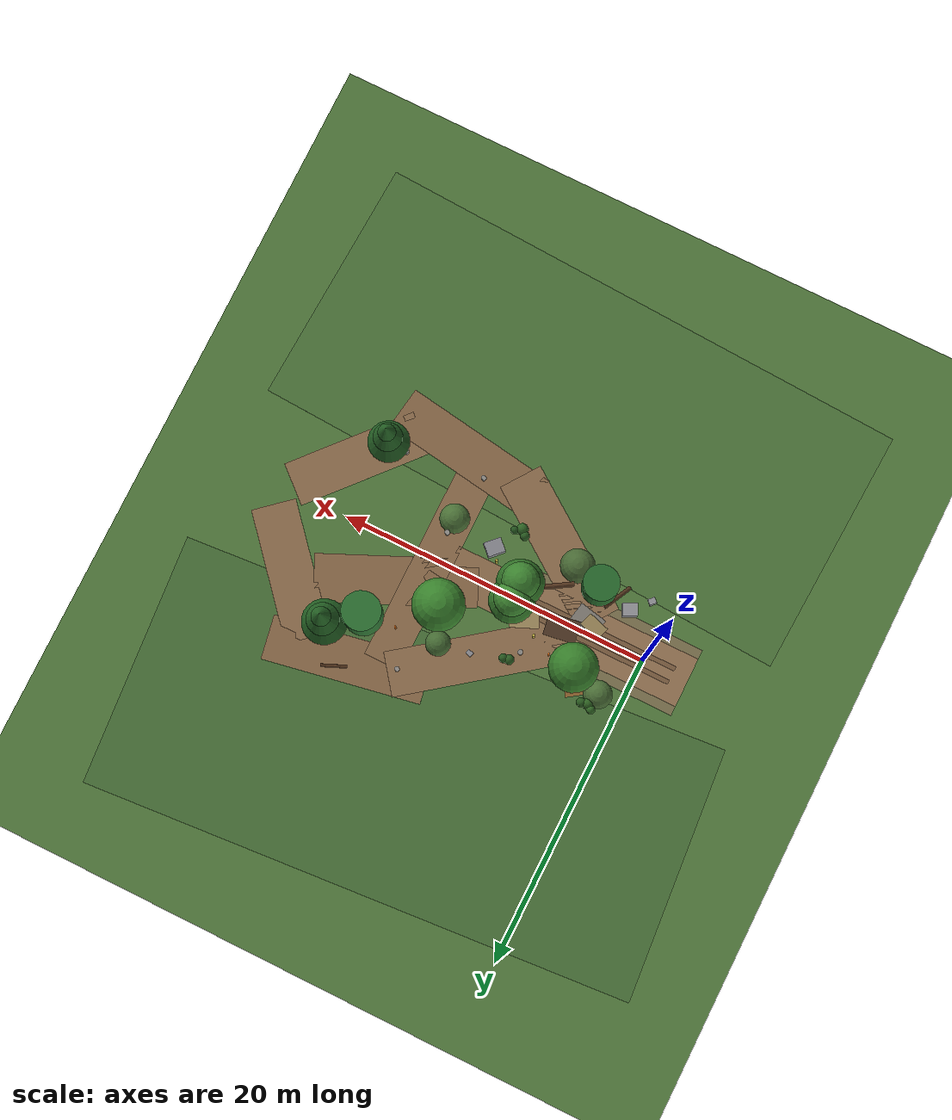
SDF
<?xml version="1.0" ?>
<!-- RELLIS-3D Realistic Regional Geospatial Outdoor Environment for AURAGUARD   -->
<!-- Generated from Regional Off-Road Geospatial Topography (RELLIS Testbed)    -->
<!-- Features:                                                                  -->
<!--  - High-realism unpaved dirt trail network with ruts and soil verges       -->
<!--  - Realistic Texas Post Oak & Cedar trees with multi-tier foliage canopies -->
<!--  - Natural granite boulder outcroppings, rock cairns, and fallen timber    -->
<!--  - Dedicated small passage gateway at x=8.5m (width 0.66m > vehicle 0.48m) -->
<!--  - Impassable bottleneck on shoulder for contrastive passage evaluation    -->
<!--  - Full 360-degree visual feature coverage for omnidirectional VO          -->
<sdf version="1.8">
  <world name="rellis_outdoor_world">

    <!-- Physics configuration for Gazebo Harmonic -->
    <physics name="1ms" type="ignored">
      <max_step_size>0.001</max_step_size>
      <real_time_factor>1.0</real_time_factor>
    </physics>

    <!-- World plugins for Gazebo Harmonic -->
    <plugin
      filename="gz-sim-physics-system"
      name="gz::sim::systems::Physics">
    </plugin>
    <plugin
      filename="gz-sim-user-commands-system"
      name="gz::sim::systems::UserCommands">
    </plugin>
    <plugin
      filename="gz-sim-scene-broadcaster-system"
      name="gz::sim::systems::SceneBroadcaster">
    </plugin>
    <plugin
      filename="gz-sim-sensors-system"
      name="gz::sim::systems::Sensors">
      <render_engine>ogre2</render_engine>
    </plugin>
    <plugin
      filename="gz-sim-imu-system"
      name="gz::sim::systems::Imu">
    </plugin>

    <!-- Official Texas A&M RELLIS Campus Geodetic Anchor (WGS84) -->
    <spherical_coordinates>
      <surface_model>EARTH_WGS84</surface_model>
      <latitude_deg>30.6279</latitude_deg>
      <longitude_deg>-96.4800</longitude_deg>
      <elevation>98.0</elevation>
      <heading_deg>0.0</heading_deg>
    </spherical_coordinates>

    <!-- Scene lighting, sky and atmospheric realism -->
    <scene>
      <ambient>0.62 0.64 0.60 1.0</ambient>
      <background>0.58 0.74 0.92 1.0</background>
      <shadows>true</shadows>
      <grid>false</grid>
    </scene>

    <!-- Natural Outdoor Sun Light -->
    <light type="directional" name="sun">
      <cast_shadows>true</cast_shadows>
      <pose>0 0 35 0 0 0</pose>
      <diffuse>0.96 0.93 0.86 1.0</diffuse>
      <specular>0.35 0.35 0.35 1.0</specular>
      <attenuation>
        <range>1000</range>
        <constant>0.9</constant>
        <linear>0.01</linear>
        <quadratic>0.001</quadratic>
      </attenuation>
      <direction>-0.38 0.28 -0.88</direction>
    </light>

    <!-- Secondary Ambient Fill Light (Sky Bounce) -->
    <light type="directional" name="sky_fill">
      <cast_shadows>false</cast_shadows>
      <pose>0 0 30 0 0 0</pose>
      <diffuse>0.25 0.32 0.40 1.0</diffuse>
      <specular>0.05 0.05 0.05 1.0</specular>
      <direction>0.3 -0.2 -0.9</direction>
    </light>

    <!-- ==================== REGIONAL GEOSPATIAL BASE TERRAIN ==================== -->
    <model name="rellis_base_ground">
      <static>true</static>
      <link name="ground_link">
        <collision name="ground_collision">
          <geometry>
            <plane>
              <normal>0 0 1</normal>
              <size>100 100</size>
            </plane>
          </geometry>
          <surface>
            <friction>
              <ode>
                <mu>0.85</mu>
                <mu2>0.80</mu2>
              </ode>
            </friction>
          </surface>
        </collision>
        <visual name="ground_visual">
          <geometry>
            <plane>
              <normal>0 0 1</normal>
              <size>100 100</size>
            </plane>
          </geometry>
          <material>
            <ambient>0.28 0.42 0.20 1.0</ambient>
            <diffuse>0.32 0.48 0.24 1.0</diffuse>
            <specular>0.03 0.03 0.03 1.0</specular>

            <pbr>
              <metal>
                <albedo_map>materials/textures/wild_grass.png</albedo_map>
                <roughness>0.85</roughness>
                <metalness>0.0</metalness>
              </metal>
            </pbr>
          </material>
        </visual>
      </link>
    </model>

    <!-- Natural Grassy Meadow Layer (North Flank) -->
    <model name="grass_meadow_north">
      <static>true</static>
      <pose>10.0 12.0 0.001 0 0 0.08</pose>
      <link name="link">
        <visual name="visual">
          <geometry>
            <box>
              <size>35.0 16.0 0.002</size>
            </box>
          </geometry>
          <material>
            <ambient>0.24 0.38 0.18 1.0</ambient>
            <diffuse>0.28 0.44 0.22 1.0</diffuse>
            <specular>0.02 0.02 0.02 1.0</specular>
          </material>
        </visual>
      </link>
    </model>

    <!-- Natural Grassy Meadow Layer (South Flank) -->
    <model name="grass_meadow_south">
      <static>true</static>
      <pose>10.0 -12.0 0.001 0 0 -0.05</pose>
      <link name="link">
        <visual name="visual">
          <geometry>
            <box>
              <size>35.0 16.0 0.002</size>
            </box>
          </geometry>
          <material>
            <ambient>0.25 0.40 0.19 1.0</ambient>
            <diffuse>0.30 0.46 0.23 1.0</diffuse>
            <specular>0.02 0.02 0.02 1.0</specular>
          </material>
        </visual>
      </link>
    </model>

    <!-- ==================== UNPAVED OFF-ROAD DIRT TRAIL NETWORK ==================== -->
    <!-- Trail Segment 1: Departure zone (x: -2 to +6m) -->
    <model name="dirt_trail_segment1">
      <static>true</static>
      <pose>2.5 0.0 0.002 0 0 0</pose>
      <link name="link">
        <visual name="visual">
          <geometry>
            <box>
              <size>11.0 3.2 0.003</size>
            </box>
          </geometry>
          <material>
            <ambient>0.52 0.40 0.28 1.0</ambient>
            <diffuse>0.58 0.45 0.32 1.0</diffuse>
            <specular>0.03 0.03 0.03 1.0</specular>
          </material>
        </visual>
      </link>
    </model>

    <!-- Left Trail Shoulder (Earthy Gravel Verge) -->
    <model name="trail_verge_left">
      <static>true</static>
      <pose>2.5 1.8 0.0015 0 0 0</pose>
      <link name="link">
        <visual name="visual">
          <geometry>
            <box>
              <size>11.0 0.8 0.002</size>
            </box>
          </geometry>
          <material>
            <ambient>0.42 0.38 0.26 1.0</ambient>
            <diffuse>0.48 0.44 0.30 1.0</diffuse>
            <specular>0.02 0.02 0.02 1.0</specular>
          </material>
        </visual>
      </link>
    </model>

    <!-- Right Trail Shoulder (Earthy Gravel Verge) -->
    <model name="trail_verge_right">
      <static>true</static>
      <pose>2.5 -1.8 0.0015 0 0 0</pose>
      <link name="link">
        <visual name="visual">
          <geometry>
            <box>
              <size>11.0 0.8 0.002</size>
            </box>
          </geometry>
          <material>
            <ambient>0.42 0.38 0.26 1.0</ambient>
            <diffuse>0.48 0.44 0.30 1.0</diffuse>
            <specular>0.02 0.02 0.02 1.0</specular>
          </material>
        </visual>
      </link>
    </model>

    <!-- Wheel Track Rut 1 (Compacted dirt wheel track) -->
    <model name="trail_rut_left">
      <static>true</static>
      <pose>3.0 0.45 0.0025 0 0 0</pose>
      <link name="link">
        <visual name="visual">
          <geometry>
            <box>
              <size>10.0 0.30 0.003</size>
            </box>
          </geometry>
          <material>
            <ambient>0.44 0.32 0.22 1.0</ambient>
            <diffuse>0.48 0.36 0.25 1.0</diffuse>
            <specular>0.04 0.04 0.04 1.0</specular>
          </material>
        </visual>
      </link>
    </model>

    <!-- Wheel Track Rut 2 (Compacted dirt wheel track) -->
    <model name="trail_rut_right">
      <static>true</static>
      <pose>3.0 -0.45 0.0025 0 0 0</pose>
      <link name="link">
        <visual name="visual">
          <geometry>
            <box>
              <size>10.0 0.30 0.003</size>
            </box>
          </geometry>
          <material>
            <ambient>0.44 0.32 0.22 1.0</ambient>
            <diffuse>0.48 0.36 0.25 1.0</diffuse>
            <specular>0.04 0.04 0.04 1.0</specular>
          </material>
        </visual>
      </link>
    </model>

    <!-- Trail Segment 2: Approach and pass-through gateway (x: 6 to 12m) -->
    <model name="dirt_trail_segment2">
      <static>true</static>
      <pose>9.0 0.0 0.002 0 0 0</pose>
      <link name="link">
        <visual name="visual">
          <geometry>
            <box>
              <size>8.0 2.8 0.003</size>
            </box>
          </geometry>
          <material>
            <ambient>0.50 0.38 0.26 1.0</ambient>
            <diffuse>0.56 0.43 0.30 1.0</diffuse>
            <specular>0.03 0.03 0.03 1.0</specular>
          </material>
        </visual>
      </link>
    </model>

    <!-- Trail Segment 3: Winding North-East bend (x: 12 to 20m) -->
    <model name="dirt_trail_segment3">
      <static>true</static>
      <pose>15.5 2.2 0.002 0 0 0.42</pose>
      <link name="link">
        <visual name="visual">
          <geometry>
            <box>
              <size>10.0 3.0 0.003</size>
            </box>
          </geometry>
          <material>
            <ambient>0.48 0.37 0.25 1.0</ambient>
            <diffuse>0.54 0.41 0.28 1.0</diffuse>
            <specular>0.03 0.03 0.03 1.0</specular>
          </material>
        </visual>
      </link>
    </model>

    <!-- ==================== NATURAL TERRAIN CHALLENGES ==================== -->
    <!-- RELLIS Mud Patch / Slip Hazard Feature -->
    <model name="rellis_mud_hazard">
      <static>true</static>
      <pose>5.2 0.35 0.004 0 0 0.15</pose>
      <link name="link">
        <visual name="visual">
          <geometry>
            <box>
              <size>2.0 1.4 0.004</size>
            </box>
          </geometry>
          <material>
            <ambient>0.24 0.17 0.11 1.0</ambient>
            <diffuse>0.30 0.21 0.14 1.0</diffuse>
            <specular>0.45 0.45 0.45 1.0</specular>
          </material>
        </visual>
      </link>
    </model>

    <!-- Rocky Gravel Rut Feature -->
    <model name="gravel_patch_1">
      <static>true</static>
      <pose>4.0 -0.8 0.003 0 0 -0.2</pose>
      <link name="link">
        <visual name="visual">
          <geometry>
            <box>
              <size>1.8 1.2 0.004</size>
            </box>
          </geometry>
          <material>
            <ambient>0.42 0.40 0.38 1.0</ambient>
            <diffuse>0.50 0.48 0.45 1.0</diffuse>
            <specular>0.10 0.10 0.10 1.0</specular>
          </material>
        </visual>
      </link>
    </model>

    <!-- DEDICATED NARROW GATEWAY PASSAGE (x = 8.5m)                           -->
    <!-- Gateway formed by Twin Oak Trees / Rock Formations:                  -->
    <!--  Left Tree:  Center (8.5, +0.57), trunk radius 0.24m -> Edge @ +0.33m -->
    <!--  Right Tree: Center (8.5, -0.57), trunk radius 0.24m -> Edge @ -0.33m -->
    <!--  Available passage width = 0.33 - (-0.33) = 0.66m                    -->
    <!--  UGV Width = 0.48m -> Symmetrical clearance = 0.09m (9 cm) on both sides -->
    <!--  Tight limit is 0.58m -> Passage is WIDE ENOUGH to navigate through! -->

    <!-- Gateway Tree Left (Texas Post Oak - Passage Boundary) -->
    <model name="gateway_tree_left">
      <static>true</static>
      <pose>8.5 0.57 0 0 0 0</pose>
      <link name="trunk">
        <collision name="collision">
          <pose>0 0 1.5 0 0 0</pose>
          <geometry>
            <cylinder>
              <radius>0.24</radius>
              <length>3.0</length>
            </cylinder>
          </geometry>
        </collision>
        <visual name="visual_trunk">
          <pose>0 0 1.5 0 0 0</pose>
          <geometry>
            <cylinder>
              <radius>0.24</radius>
              <length>3.0</length>
            </cylinder>
          </geometry>
          <material>
            <ambient>0.34 0.21 0.12 1.0</ambient>
            <diffuse>0.39 0.25 0.15 1.0</diffuse>
            <specular>0.02 0.02 0.02 1.0</specular>

            <pbr>
              <metal>
                <albedo_map>materials/textures/tree_bark.png</albedo_map>
                <roughness>0.92</roughness>
                <metalness>0.0</metalness>
              </metal>
            </pbr>
          </material>
        </visual>
        <!-- Layer 1 Lower Foliage -->
        <visual name="canopy_lower">
          <pose>0 0 3.2 0 0 0</pose>
          <geometry>
            <sphere>
              <radius>1.4</radius>
            </sphere>
          </geometry>
          <material>
            <ambient>0.16 0.38 0.13 1.0</ambient>
            <diffuse>0.21 0.48 0.17 1.0</diffuse>

            <pbr>
              <metal>
                <albedo_map>materials/textures/foliage.png</albedo_map>
                <roughness>0.88</roughness>
                <metalness>0.0</metalness>
              </metal>
            </pbr>
          </material>
        </visual>
        <!-- Layer 2 Crown Foliage -->
        <visual name="canopy_crown">
          <pose>0 0 4.0 0 0 0.3</pose>
          <geometry>
            <sphere>
              <radius>1.1</radius>
            </sphere>
          </geometry>
          <material>
            <ambient>0.19 0.44 0.15 1.0</ambient>
            <diffuse>0.25 0.54 0.20 1.0</diffuse>

            <pbr>
              <metal>
                <albedo_map>materials/textures/foliage.png</albedo_map>
                <roughness>0.88</roughness>
                <metalness>0.0</metalness>
              </metal>
            </pbr>
          </material>
        </visual>
      </link>
    </model>

    <!-- Gateway Tree Right (Texas Post Oak - Passage Boundary) -->
    <model name="gateway_tree_right">
      <static>true</static>
      <pose>8.5 -0.57 0 0 0 0</pose>
      <link name="trunk">
        <collision name="collision">
          <pose>0 0 1.5 0 0 0</pose>
          <geometry>
            <cylinder>
              <radius>0.24</radius>
              <length>3.0</length>
            </cylinder>
          </geometry>
        </collision>
        <visual name="visual_trunk">
          <pose>0 0 1.5 0 0 0</pose>
          <geometry>
            <cylinder>
              <radius>0.24</radius>
              <length>3.0</length>
            </cylinder>
          </geometry>
          <material>
            <ambient>0.32 0.20 0.11 1.0</ambient>
            <diffuse>0.37 0.24 0.14 1.0</diffuse>
            <specular>0.02 0.02 0.02 1.0</specular>

            <pbr>
              <metal>
                <albedo_map>materials/textures/tree_bark.png</albedo_map>
                <roughness>0.92</roughness>
                <metalness>0.0</metalness>
              </metal>
            </pbr>
          </material>
        </visual>
        <!-- Layer 1 Lower Foliage -->
        <visual name="canopy_lower">
          <pose>0 0 3.3 0 0 0</pose>
          <geometry>
            <sphere>
              <radius>1.45</radius>
            </sphere>
          </geometry>
          <material>
            <ambient>0.15 0.36 0.12 1.0</ambient>
            <diffuse>0.20 0.46 0.16 1.0</diffuse>

            <pbr>
              <metal>
                <albedo_map>materials/textures/foliage.png</albedo_map>
                <roughness>0.88</roughness>
                <metalness>0.0</metalness>
              </metal>
            </pbr>
          </material>
        </visual>
        <!-- Layer 2 Crown Foliage -->
        <visual name="canopy_crown">
          <pose>0 0 4.1 0 0 -0.4</pose>
          <geometry>
            <sphere>
              <radius>1.15</radius>
            </sphere>
          </geometry>
          <material>
            <ambient>0.18 0.42 0.14 1.0</ambient>
            <diffuse>0.24 0.52 0.19 1.0</diffuse>

            <pbr>
              <metal>
                <albedo_map>materials/textures/foliage.png</albedo_map>
                <roughness>0.88</roughness>
                <metalness>0.0</metalness>
              </metal>
            </pbr>
          </material>
        </visual>
      </link>
    </model>

    <!-- Side Rock Boulder (Creates an Impassable 0.36m Gap with Left Tree for Contrast) -->
    <!-- Left Tree Edge at y = 0.57 + 0.24 = 0.81m. Boulder center at (8.5, 1.35), radius 0.18m -> Edge at 1.17m. -->
    <!-- Gap = 1.17 - 0.81 = 0.36m < 0.48m vehicle width -> PROVEN IMPASSABLE -->
    <model name="side_boulder_impassable_gap">
      <static>true</static>
      <pose>8.5 1.35 0.35 0 0 0.3</pose>
      <link name="link">
        <collision name="collision">
          <geometry>
            <cylinder>
              <radius>0.18</radius>
              <length>0.7</length>
            </cylinder>
          </geometry>
        </collision>
        <visual name="visual">
          <geometry>
            <cylinder>
              <radius>0.18</radius>
              <length>0.7</length>
            </cylinder>
          </geometry>
          <material>
            <ambient>0.48 0.47 0.45 1.0</ambient>
            <diffuse>0.56 0.55 0.53 1.0</diffuse>
            <specular>0.08 0.08 0.08 1.0</specular>
          </material>
        </visual>
      </link>
    </model>

    <!-- ==================== SURROUNDING REALISTIC VEGETATION & LANDMARKS ==================== -->
    <!-- RELLIS Live Oak 1 (Forward Left Shoulder) -->
    <model name="rellis_oak_shoulder_left">
      <static>true</static>
      <pose>3.5 2.6 0 0 0 0</pose>
      <link name="trunk">
        <collision name="collision">
          <pose>0 0 1.5 0 0 0</pose>
          <geometry>
            <cylinder>
              <radius>0.28</radius>
              <length>3.0</length>
            </cylinder>
          </geometry>
        </collision>
        <visual name="visual_trunk">
          <pose>0 0 1.5 0 0 0</pose>
          <geometry>
            <cylinder>
              <radius>0.28</radius>
              <length>3.0</length>
            </cylinder>
          </geometry>
          <material>
            <ambient>0.36 0.22 0.13 1.0</ambient>
            <diffuse>0.42 0.27 0.16 1.0</diffuse>

            <pbr>
              <metal>
                <albedo_map>materials/textures/tree_bark.png</albedo_map>
                <roughness>0.92</roughness>
                <metalness>0.0</metalness>
              </metal>
            </pbr>
          </material>
        </visual>
        <visual name="visual_foliage">
          <pose>0 0 3.8 0 0 0</pose>
          <geometry>
            <sphere>
              <radius>1.5</radius>
            </sphere>
          </geometry>
          <material>
            <ambient>0.17 0.40 0.13 1.0</ambient>
            <diffuse>0.22 0.50 0.17 1.0</diffuse>

            <pbr>
              <metal>
                <albedo_map>materials/textures/foliage.png</albedo_map>
                <roughness>0.88</roughness>
                <metalness>0.0</metalness>
              </metal>
            </pbr>
          </material>
        </visual>
      </link>
    </model>

    <!-- RELLIS Cedar Tree (Forward Right Shoulder) -->
    <model name="rellis_cedar_shoulder_right">
      <static>true</static>
      <pose>4.2 -2.5 0 0 0 0</pose>
      <link name="trunk">
        <collision name="collision">
          <pose>0 0 1.4 0 0 0</pose>
          <geometry>
            <cylinder>
              <radius>0.26</radius>
              <length>2.8</length>
            </cylinder>
          </geometry>
        </collision>
        <visual name="visual_trunk">
          <pose>0 0 1.4 0 0 0</pose>
          <geometry>
            <cylinder>
              <radius>0.26</radius>
              <length>2.8</length>
            </cylinder>
          </geometry>
          <material>
            <ambient>0.33 0.20 0.10 1.0</ambient>
            <diffuse>0.38 0.24 0.13 1.0</diffuse>

            <pbr>
              <metal>
                <albedo_map>materials/textures/tree_bark.png</albedo_map>
                <roughness>0.92</roughness>
                <metalness>0.0</metalness>
              </metal>
            </pbr>
          </material>
        </visual>
        <visual name="visual_foliage">
          <pose>0 0 3.5 0 0 0</pose>
          <geometry>
            <cylinder>
              <radius>1.1</radius>
              <length>2.2</length>
            </cylinder>
          </geometry>
          <material>
            <ambient>0.12 0.32 0.14 1.0</ambient>
            <diffuse>0.16 0.42 0.18 1.0</diffuse>

            <pbr>
              <metal>
                <albedo_map>materials/textures/foliage.png</albedo_map>
                <roughness>0.88</roughness>
                <metalness>0.0</metalness>
              </metal>
            </pbr>
          </material>
        </visual>
      </link>
    </model>

    <!-- Fallen Log Crossing (Natural Shoulder Obstacle) -->
    <model name="fallen_log_shoulder">
      <static>true</static>
      <pose>6.8 -1.7 0.16 0 1.5708 0.55</pose>
      <link name="link">
        <collision name="collision">
          <geometry>
            <cylinder>
              <radius>0.16</radius>
              <length>2.6</length>
            </cylinder>
          </geometry>
        </collision>
        <visual name="visual">
          <geometry>
            <cylinder>
              <radius>0.16</radius>
              <length>2.6</length>
            </cylinder>
          </geometry>
          <material>
            <ambient>0.26 0.16 0.09 1.0</ambient>
            <diffuse>0.33 0.21 0.12 1.0</diffuse>
          </material>
        </visual>
      </link>
    </model>

    <!-- Granite Rock Cairn 1 (Visual Odometry & Map Feature Anchor) -->
    <model name="granite_cairn_1">
      <static>true</static>
      <pose>2.0 -2.4 0.40 0 0 0.45</pose>
      <link name="link">
        <collision name="collision">
          <geometry>
            <box>
              <size>0.9 0.8 0.8</size>
            </box>
          </geometry>
        </collision>
        <visual name="visual">
          <geometry>
            <box>
              <size>0.9 0.8 0.8</size>
            </box>
          </geometry>
          <material>
            <ambient>0.46 0.46 0.49 1.0</ambient>
            <diffuse>0.58 0.58 0.60 1.0</diffuse>
            <specular>0.12 0.12 0.12 1.0</specular>
          </material>
        </visual>
      </link>
    </model>

    <!-- Post Oak Tree (Bend Anchor at x=12.5m) -->
    <model name="rellis_oak_bend">
      <static>true</static>
      <pose>12.2 2.8 0 0 0 0</pose>
      <link name="trunk">
        <collision name="collision">
          <pose>0 0 1.5 0 0 0</pose>
          <geometry>
            <cylinder>
              <radius>0.30</radius>
              <length>3.0</length>
            </cylinder>
          </geometry>
        </collision>
        <visual name="visual_trunk">
          <pose>0 0 1.5 0 0 0</pose>
          <geometry>
            <cylinder>
              <radius>0.30</radius>
              <length>3.0</length>
            </cylinder>
          </geometry>
          <material>
            <ambient>0.35 0.22 0.12 1.0</ambient>
            <diffuse>0.40 0.26 0.15 1.0</diffuse>

            <pbr>
              <metal>
                <albedo_map>materials/textures/tree_bark.png</albedo_map>
                <roughness>0.92</roughness>
                <metalness>0.0</metalness>
              </metal>
            </pbr>
          </material>
        </visual>
        <visual name="visual_foliage">
          <pose>0 0 3.9 0 0 0</pose>
          <geometry>
            <sphere>
              <radius>1.6</radius>
            </sphere>
          </geometry>
          <material>
            <ambient>0.18 0.42 0.14 1.0</ambient>
            <diffuse>0.23 0.52 0.18 1.0</diffuse>

            <pbr>
              <metal>
                <albedo_map>materials/textures/foliage.png</albedo_map>
                <roughness>0.88</roughness>
                <metalness>0.0</metalness>
              </metal>
            </pbr>
          </material>
        </visual>
      </link>
    </model>

    <!-- Granite Rock Cluster 2 (South Shoulder at x=11m) -->
    <model name="granite_cluster_2">
      <static>true</static>
      <pose>11.0 -2.2 0.35 0 0 0.8</pose>
      <link name="link">
        <collision name="collision">
          <geometry>
            <box>
              <size>1.1 0.9 0.7</size>
            </box>
          </geometry>
        </collision>
        <visual name="visual">
          <geometry>
            <box>
              <size>1.1 0.9 0.7</size>
            </box>
          </geometry>
          <material>
            <ambient>0.44 0.44 0.46 1.0</ambient>
            <diffuse>0.54 0.54 0.57 1.0</diffuse>
          </material>
        </visual>
      </link>
    </model>

    <!-- Cedar Tree (Far North Flank at x=15m) -->
    <model name="rellis_cedar_far">
      <static>true</static>
      <pose>16.0 5.2 0 0 0 0</pose>
      <link name="trunk">
        <collision name="collision">
          <pose>0 0 1.4 0 0 0</pose>
          <geometry>
            <cylinder>
              <radius>0.25</radius>
              <length>2.8</length>
            </cylinder>
          </geometry>
        </collision>
        <visual name="visual_trunk">
          <pose>0 0 1.4 0 0 0</pose>
          <geometry>
            <cylinder>
              <radius>0.25</radius>
              <length>2.8</length>
            </cylinder>
          </geometry>
          <material>
            <ambient>0.32 0.20 0.10 1.0</ambient>
            <diffuse>0.38 0.24 0.13 1.0</diffuse>

            <pbr>
              <metal>
                <albedo_map>materials/textures/tree_bark.png</albedo_map>
                <roughness>0.92</roughness>
                <metalness>0.0</metalness>
              </metal>
            </pbr>
          </material>
        </visual>
        <visual name="visual_foliage">
          <pose>0 0 3.6 0 0 0</pose>
          <geometry>
            <cylinder>
              <radius>1.2</radius>
              <length>2.4</length>
            </cylinder>
          </geometry>
          <material>
            <ambient>0.14 0.34 0.15 1.0</ambient>
            <diffuse>0.18 0.45 0.20 1.0</diffuse>

            <pbr>
              <metal>
                <albedo_map>materials/textures/foliage.png</albedo_map>
                <roughness>0.88</roughness>
                <metalness>0.0</metalness>
              </metal>
            </pbr>
          </material>
        </visual>
      </link>
    </model>

    <!-- Trail Border Post Markers -->
    <model name="trail_marker_post1">
      <static>true</static>
      <pose>6.5 1.6 0.45 0 0 0</pose>
      <link name="link">
        <collision name="collision">
          <geometry>
            <cylinder>
              <radius>0.08</radius>
              <length>0.9</length>
            </cylinder>
          </geometry>
        </collision>
        <visual name="visual">
          <geometry>
            <cylinder>
              <radius>0.08</radius>
              <length>0.9</length>
            </cylinder>
          </geometry>
          <material>
            <ambient>0.65 0.58 0.20 1.0</ambient>
            <diffuse>0.75 0.68 0.25 1.0</diffuse>
          </material>
        </visual>
      </link>
    </model>

    <model name="trail_marker_post2">
      <static>true</static>
      <pose>10.5 -1.5 0.45 0 0 0</pose>
      <link name="link">
        <collision name="collision">
          <geometry>
            <cylinder>
              <radius>0.08</radius>
              <length>0.9</length>
            </cylinder>
          </geometry>
        </collision>
        <visual name="visual">
          <geometry>
            <cylinder>
              <radius>0.08</radius>
              <length>0.9</length>
            </cylinder>
          </geometry>
          <material>
            <ambient>0.65 0.58 0.20 1.0</ambient>
            <diffuse>0.75 0.68 0.25 1.0</diffuse>
          </material>
        </visual>
      </link>
    </model>

    <!-- ==================== ATMOSPHERIC FOG (RELLIS morning haze) ==================== -->
    <!-- Additional fill: second ambient sky-scatter point light for realism            -->
    <light type="point" name="ambient_scatter_east">
      <cast_shadows>false</cast_shadows>
      <pose>20 -10 8 0 0 0</pose>
      <diffuse>0.18 0.22 0.28 1.0</diffuse>
      <specular>0.02 0.02 0.02 1.0</specular>
      <attenuation>
        <range>60</range>
        <constant>0.6</constant>
        <linear>0.05</linear>
        <quadratic>0.002</quadratic>
      </attenuation>
    </light>
    <light type="point" name="ambient_scatter_west">
      <cast_shadows>false</cast_shadows>
      <pose>-5 5 6 0 0 0</pose>
      <diffuse>0.15 0.19 0.24 1.0</diffuse>
      <specular>0.02 0.02 0.02 1.0</specular>
      <attenuation>
        <range>40</range>
        <constant>0.7</constant>
        <linear>0.06</linear>
        <quadratic>0.003</quadratic>
      </attenuation>
    </light>

    <!-- ==================== TERRAIN UNDULATIONS (soil mounds) ==================== -->
    <!-- Low ellipsoid mounds that break up flat ground plane — key RELLIS feature -->
    <model name="terrain_mound_1">
      <static>true</static>
      <pose>1.5 3.0 -0.08 0 0 0.3</pose>
      <link name="link">
        <collision name="col">
          <geometry><sphere><radius>0.90</radius></sphere></geometry>
        </collision>
        <visual name="vis">
          <geometry><sphere><radius>0.90</radius></sphere></geometry>
          <material>
            <ambient>0.26 0.38 0.18 1.0</ambient>
            <diffuse>0.30 0.44 0.22 1.0</diffuse>
            <pbr><metal>
              <albedo_map>materials/textures/wild_grass.png</albedo_map>
              <roughness>0.95</roughness><metalness>0.0</metalness>
            </metal></pbr>
          </material>
        </visual>
      </link>
    </model>

    <model name="terrain_mound_2">
      <static>true</static>
      <pose>6.0 -3.5 -0.10 0 0 -0.2</pose>
      <link name="link">
        <collision name="col">
          <geometry><sphere><radius>1.10</radius></sphere></geometry>
        </collision>
        <visual name="vis">
          <geometry><sphere><radius>1.10</radius></sphere></geometry>
          <material>
            <ambient>0.25 0.36 0.17 1.0</ambient>
            <diffuse>0.29 0.42 0.21 1.0</diffuse>
            <pbr><metal>
              <albedo_map>materials/textures/wild_grass.png</albedo_map>
              <roughness>0.95</roughness><metalness>0.0</metalness>
            </metal></pbr>
          </material>
        </visual>
      </link>
    </model>

    <model name="terrain_mound_3">
      <static>true</static>
      <pose>11.5 4.5 -0.09 0 0 0.7</pose>
      <link name="link">
        <collision name="col">
          <geometry><sphere><radius>0.80</radius></sphere></geometry>
        </collision>
        <visual name="vis">
          <geometry><sphere><radius>0.80</radius></sphere></geometry>
          <material>
            <ambient>0.24 0.37 0.17 1.0</ambient>
            <diffuse>0.28 0.43 0.21 1.0</diffuse>
            <pbr><metal>
              <albedo_map>materials/textures/wild_grass.png</albedo_map>
              <roughness>0.95</roughness><metalness>0.0</metalness>
            </metal></pbr>
          </material>
        </visual>
      </link>
    </model>

    <model name="terrain_mound_4">
      <static>true</static>
      <pose>14.0 -2.8 -0.08 0 0 0.1</pose>
      <link name="link">
        <collision name="col">
          <geometry><sphere><radius>0.95</radius></sphere></geometry>
        </collision>
        <visual name="vis">
          <geometry><sphere><radius>0.95</radius></sphere></geometry>
          <material>
            <ambient>0.26 0.39 0.18 1.0</ambient>
            <diffuse>0.30 0.45 0.22 1.0</diffuse>
            <pbr><metal>
              <albedo_map>materials/textures/wild_grass.png</albedo_map>
              <roughness>0.95</roughness><metalness>0.0</metalness>
            </metal></pbr>
          </material>
        </visual>
      </link>
    </model>

    <!-- Sandy soil erosion patch on trail (RELLIS-style exposed substrate) -->
    <model name="sandy_erosion_patch_1">
      <static>true</static>
      <pose>7.5 0.8 0.004 0 0 0.4</pose>
      <link name="link">
        <visual name="vis">
          <geometry><box><size>1.8 1.2 0.003</size></box></geometry>
          <material>
            <ambient>0.55 0.48 0.32 1.0</ambient>
            <diffuse>0.62 0.54 0.36 1.0</diffuse>
            <pbr><metal>
              <albedo_map>materials/textures/sandy_soil.png</albedo_map>
              <roughness>0.90</roughness><metalness>0.0</metalness>
            </metal></pbr>
          </material>
        </visual>
      </link>
    </model>

    <model name="sandy_erosion_patch_2">
      <static>true</static>
      <pose>3.5 -0.6 0.004 0 0 -0.3</pose>
      <link name="link">
        <visual name="vis">
          <geometry><box><size>1.4 0.9 0.003</size></box></geometry>
          <material>
            <ambient>0.53 0.46 0.30 1.0</ambient>
            <diffuse>0.60 0.52 0.34 1.0</diffuse>
            <pbr><metal>
              <albedo_map>materials/textures/sandy_soil.png</albedo_map>
              <roughness>0.90</roughness><metalness>0.0</metalness>
            </metal></pbr>
          </material>
        </visual>
      </link>
    </model>

    <!-- Autumn leaf litter patches (visual richness) -->
    <model name="leaf_litter_1">
      <static>true</static>
      <pose>2.8 2.8 0.003 0 0 0.6</pose>
      <link name="link">
        <visual name="vis">
          <geometry><box><size>2.0 1.6 0.002</size></box></geometry>
          <material>
            <ambient>0.48 0.32 0.14 1.0</ambient>
            <diffuse>0.55 0.38 0.18 1.0</diffuse>
            <pbr><metal>
              <albedo_map>materials/textures/autumn_leaves.png</albedo_map>
              <roughness>0.95</roughness><metalness>0.0</metalness>
            </metal></pbr>
          </material>
        </visual>
      </link>
    </model>

    <model name="leaf_litter_2">
      <static>true</static>
      <pose>4.5 -3.2 0.003 0 0 -0.8</pose>
      <link name="link">
        <visual name="vis">
          <geometry><box><size>1.8 1.4 0.002</size></box></geometry>
          <material>
            <ambient>0.46 0.31 0.13 1.0</ambient>
            <diffuse>0.53 0.36 0.17 1.0</diffuse>
            <pbr><metal>
              <albedo_map>materials/textures/autumn_leaves.png</albedo_map>
              <roughness>0.95</roughness><metalness>0.0</metalness>
            </metal></pbr>
          </material>
        </visual>
      </link>
    </model>

    <!-- ==================== DENSE UNDERGROWTH CLUSTERS ==================== -->
    <!-- Low shrub spheres mimicking RELLIS coastal bermuda grass tufts       -->
    <model name="shrub_cluster_1">
      <static>true</static>
      <pose>1.8 3.8 0.25 0 0 0</pose>
      <link name="link">
        <visual name="vis_a"><pose>0 0 0 0 0 0</pose>
          <geometry><sphere><radius>0.35</radius></sphere></geometry>
          <material><ambient>0.14 0.30 0.10 1.0</ambient><diffuse>0.18 0.38 0.13 1.0</diffuse></material>
        </visual>
        <visual name="vis_b"><pose>0.4 0.1 0 0 0 0</pose>
          <geometry><sphere><radius>0.30</radius></sphere></geometry>
          <material><ambient>0.12 0.28 0.09 1.0</ambient><diffuse>0.16 0.35 0.12 1.0</diffuse></material>
        </visual>
        <visual name="vis_c"><pose>-0.3 0.25 0.05 0 0 0</pose>
          <geometry><sphere><radius>0.28</radius></sphere></geometry>
          <material><ambient>0.15 0.32 0.11 1.0</ambient><diffuse>0.19 0.40 0.14 1.0</diffuse></material>
        </visual>
      </link>
    </model>

    <model name="shrub_cluster_2">
      <static>true</static>
      <pose>7.2 3.5 0.22 0 0 0.5</pose>
      <link name="link">
        <visual name="vis_a"><pose>0 0 0 0 0 0</pose>
          <geometry><sphere><radius>0.32</radius></sphere></geometry>
          <material><ambient>0.13 0.29 0.10 1.0</ambient><diffuse>0.17 0.36 0.13 1.0</diffuse></material>
        </visual>
        <visual name="vis_b"><pose>0.35 -0.1 0 0 0 0</pose>
          <geometry><sphere><radius>0.28</radius></sphere></geometry>
          <material><ambient>0.12 0.27 0.09 1.0</ambient><diffuse>0.15 0.34 0.12 1.0</diffuse></material>
        </visual>
      </link>
    </model>

    <model name="shrub_cluster_3">
      <static>true</static>
      <pose>10.0 -4.0 0.20 0 0 -0.3</pose>
      <link name="link">
        <visual name="vis_a"><pose>0 0 0 0 0 0</pose>
          <geometry><sphere><radius>0.38</radius></sphere></geometry>
          <material><ambient>0.14 0.31 0.11 1.0</ambient><diffuse>0.18 0.39 0.14 1.0</diffuse></material>
        </visual>
        <visual name="vis_b"><pose>-0.4 0.2 0.05 0 0 0</pose>
          <geometry><sphere><radius>0.30</radius></sphere></geometry>
          <material><ambient>0.13 0.28 0.10 1.0</ambient><diffuse>0.16 0.36 0.13 1.0</diffuse></material>
        </visual>
        <visual name="vis_c"><pose>0.3 0.35 0 0 0 0</pose>
          <geometry><sphere><radius>0.26</radius></sphere></geometry>
          <material><ambient>0.11 0.26 0.09 1.0</ambient><diffuse>0.14 0.33 0.12 1.0</diffuse></material>
        </visual>
      </link>
    </model>

    <!-- ==================== ADDITIONAL SMALL BOULDER SCATTER ==================== -->
    <!-- Field stones typical of RELLIS granite/limestone outcrops -->
    <model name="fieldstone_1">
      <static>true</static>
      <pose>1.0 -3.5 0.18 0.1 0.05 0.8</pose>
      <link name="link">
        <collision name="col"><geometry><box><size>0.45 0.38 0.36</size></box></geometry></collision>
        <visual name="vis">
          <geometry><box><size>0.45 0.38 0.36</size></box></geometry>
          <material>
            <ambient>0.46 0.46 0.48 1.0</ambient>
            <diffuse>0.55 0.55 0.57 1.0</diffuse>
            <specular>0.10 0.10 0.10 1.0</specular>
            <pbr><metal>
              <albedo_map>materials/textures/granite_rock.png</albedo_map>
              <roughness>0.85</roughness><metalness>0.0</metalness>
            </metal></pbr>
          </material>
        </visual>
      </link>
    </model>

    <model name="fieldstone_2">
      <static>true</static>
      <pose>9.5 4.2 0.14 -0.05 0.1 -0.3</pose>
      <link name="link">
        <collision name="col"><geometry><box><size>0.35 0.30 0.28</size></box></geometry></collision>
        <visual name="vis">
          <geometry><box><size>0.35 0.30 0.28</size></box></geometry>
          <material>
            <ambient>0.44 0.44 0.46 1.0</ambient>
            <diffuse>0.53 0.53 0.55 1.0</diffuse>
            <specular>0.08 0.08 0.08 1.0</specular>
            <pbr><metal>
              <albedo_map>materials/textures/granite_rock.png</albedo_map>
              <roughness>0.85</roughness><metalness>0.0</metalness>
            </metal></pbr>
          </material>
        </visual>
      </link>
    </model>

    <model name="fieldstone_3">
      <static>true</static>
      <pose>13.5 1.5 0.20 0.08 -0.05 1.2</pose>
      <link name="link">
        <collision name="col"><geometry><box><size>0.50 0.42 0.40</size></box></geometry></collision>
        <visual name="vis">
          <geometry><box><size>0.50 0.42 0.40</size></box></geometry>
          <material>
            <ambient>0.45 0.45 0.47 1.0</ambient>
            <diffuse>0.54 0.54 0.56 1.0</diffuse>
            <specular>0.10 0.10 0.10 1.0</specular>
            <pbr><metal>
              <albedo_map>materials/textures/granite_rock.png</albedo_map>
              <roughness>0.85</roughness><metalness>0.0</metalness>
            </metal></pbr>
          </material>
        </visual>
      </link>
    </model>

    <!-- ==================== CONE-CANOPY CEDAR TREES (Far Treeline) ==================== -->
    <!-- 3-tier stacked cones give realistic evergreen cedar silhouette                 -->
    <model name="cedar_cone_far_left">
      <static>true</static>
      <pose>18.0 6.5 0 0 0 0</pose>
      <link name="trunk">
        <collision name="col"><pose>0 0 1.2 0 0 0</pose>
          <geometry><cylinder><radius>0.22</radius><length>2.4</length></cylinder></geometry>
        </collision>
        <visual name="trunk_vis"><pose>0 0 1.2 0 0 0</pose>
          <geometry><cylinder><radius>0.22</radius><length>2.4</length></cylinder></geometry>
          <material><ambient>0.30 0.18 0.09 1.0</ambient><diffuse>0.36 0.22 0.11 1.0</diffuse>
            <pbr><metal><albedo_map>materials/textures/tree_bark.png</albedo_map>
              <roughness>0.92</roughness><metalness>0.0</metalness></metal></pbr>
          </material>
        </visual>
        <!-- Bottom cone tier -->
        <visual name="cone_bottom"><pose>0 0 2.8 0 0 0</pose>
          <geometry><cone><radius>1.4</radius><length>1.8</length></cone></geometry>
          <material><ambient>0.10 0.28 0.10 1.0</ambient><diffuse>0.13 0.36 0.13 1.0</diffuse>
            <pbr><metal><albedo_map>materials/textures/foliage.png</albedo_map>
              <roughness>0.90</roughness><metalness>0.0</metalness></metal></pbr>
          </material>
        </visual>
        <!-- Middle cone tier -->
        <visual name="cone_mid"><pose>0 0 4.0 0 0 0</pose>
          <geometry><cone><radius>1.0</radius><length>1.6</length></cone></geometry>
          <material><ambient>0.11 0.30 0.11 1.0</ambient><diffuse>0.14 0.38 0.14 1.0</diffuse>
            <pbr><metal><albedo_map>materials/textures/foliage.png</albedo_map>
              <roughness>0.90</roughness><metalness>0.0</metalness></metal></pbr>
          </material>
        </visual>
        <!-- Top cone tier -->
        <visual name="cone_top"><pose>0 0 5.0 0 0 0</pose>
          <geometry><cone><radius>0.6</radius><length>1.2</length></cone></geometry>
          <material><ambient>0.12 0.32 0.12 1.0</ambient><diffuse>0.15 0.40 0.15 1.0</diffuse>
            <pbr><metal><albedo_map>materials/textures/foliage.png</albedo_map>
              <roughness>0.90</roughness><metalness>0.0</metalness></metal></pbr>
          </material>
        </visual>
      </link>
    </model>

    <model name="cedar_cone_far_right">
      <static>true</static>
      <pose>19.5 -5.0 0 0 0 0.3</pose>
      <link name="trunk">
        <collision name="col"><pose>0 0 1.1 0 0 0</pose>
          <geometry><cylinder><radius>0.20</radius><length>2.2</length></cylinder></geometry>
        </collision>
        <visual name="trunk_vis"><pose>0 0 1.1 0 0 0</pose>
          <geometry><cylinder><radius>0.20</radius><length>2.2</length></cylinder></geometry>
          <material><ambient>0.28 0.17 0.08 1.0</ambient><diffuse>0.34 0.21 0.10 1.0</diffuse>
            <pbr><metal><albedo_map>materials/textures/tree_bark.png</albedo_map>
              <roughness>0.92</roughness><metalness>0.0</metalness></metal></pbr>
          </material>
        </visual>
        <visual name="cone_bottom"><pose>0 0 2.6 0 0 0</pose>
          <geometry><cone><radius>1.3</radius><length>1.7</length></cone></geometry>
          <material><ambient>0.10 0.27 0.10 1.0</ambient><diffuse>0.13 0.35 0.13 1.0</diffuse>
            <pbr><metal><albedo_map>materials/textures/foliage.png</albedo_map>
              <roughness>0.90</roughness><metalness>0.0</metalness></metal></pbr>
          </material>
        </visual>
        <visual name="cone_mid"><pose>0 0 3.8 0 0 0</pose>
          <geometry><cone><radius>0.90</radius><length>1.5</length></cone></geometry>
          <material><ambient>0.11 0.29 0.11 1.0</ambient><diffuse>0.14 0.37 0.14 1.0</diffuse>
            <pbr><metal><albedo_map>materials/textures/foliage.png</albedo_map>
              <roughness>0.90</roughness><metalness>0.0</metalness></metal></pbr>
          </material>
        </visual>
        <visual name="cone_top"><pose>0 0 4.8 0 0 0</pose>
          <geometry><cone><radius>0.55</radius><length>1.1</length></cone></geometry>
          <material><ambient>0.12 0.31 0.12 1.0</ambient><diffuse>0.15 0.39 0.15 1.0</diffuse>
            <pbr><metal><albedo_map>materials/textures/foliage.png</albedo_map>
              <roughness>0.90</roughness><metalness>0.0</metalness></metal></pbr>
          </material>
        </visual>
      </link>
    </model>

    <!-- Additional fallen log for visual diversity (south shoulder at x=3m) -->
    <model name="fallen_log_south">
      <static>true</static>
      <pose>3.0 -2.8 0.13 0 1.5708 1.1</pose>
      <link name="link">
        <collision name="col">
          <geometry><cylinder><radius>0.13</radius><length>2.0</length></cylinder></geometry>
        </collision>
        <visual name="vis">
          <geometry><cylinder><radius>0.13</radius><length>2.0</length></cylinder></geometry>
          <material>
            <ambient>0.24 0.15 0.08 1.0</ambient>
            <diffuse>0.30 0.19 0.10 1.0</diffuse>
            <pbr><metal><albedo_map>materials/textures/tree_bark.png</albedo_map>
              <roughness>0.95</roughness><metalness>0.0</metalness></metal></pbr>
          </material>
        </visual>
      </link>
    </model>

    <!-- ==================== EXPANDED MULTI-ROAD NETWORK ==================== -->
    <!-- North Road Branch (Trail from main junction x=5m north-east to x=22m) -->
    <model name="dirt_trail_north_branch1">
      <static>true</static>
      <pose>9.0 4.2 0.002 0 0 0.65</pose>
      <link name="link">
        <visual name="visual">
          <geometry><box><size>11.0 2.8 0.003</size></box></geometry>
          <material>
            <ambient>0.50 0.38 0.26 1.0</ambient>
            <diffuse>0.56 0.43 0.30 1.0</diffuse>
            <specular>0.03 0.03 0.03 1.0</specular>
          </material>
        </visual>
      </link>
    </model>

    <model name="dirt_trail_north_branch2">
      <static>true</static>
      <pose>16.0 7.8 0.002 0 0 0.18</pose>
      <link name="link">
        <visual name="visual">
          <geometry><box><size>10.0 2.8 0.003</size></box></geometry>
          <material>
            <ambient>0.48 0.36 0.25 1.0</ambient>
            <diffuse>0.54 0.41 0.28 1.0</diffuse>
            <specular>0.03 0.03 0.03 1.0</specular>
          </material>
        </visual>
      </link>
    </model>

    <model name="dirt_trail_north_loop">
      <static>true</static>
      <pose>21.5 4.5 0.002 0 0 -0.85</pose>
      <link name="link">
        <visual name="visual">
          <geometry><box><size>8.5 2.8 0.003</size></box></geometry>
          <material>
            <ambient>0.50 0.38 0.26 1.0</ambient>
            <diffuse>0.56 0.43 0.30 1.0</diffuse>
            <specular>0.03 0.03 0.03 1.0</specular>
          </material>
        </visual>
      </link>
    </model>

    <!-- South Road Branch (Trail from junction x=3.5m south-east to x=22m) -->
    <model name="dirt_trail_south_branch1">
      <static>true</static>
      <pose>7.5 -4.0 0.002 0 0 -0.62</pose>
      <link name="link">
        <visual name="visual">
          <geometry><box><size>10.0 2.8 0.003</size></box></geometry>
          <material>
            <ambient>0.50 0.38 0.26 1.0</ambient>
            <diffuse>0.56 0.43 0.30 1.0</diffuse>
            <specular>0.03 0.03 0.03 1.0</specular>
          </material>
        </visual>
      </link>
    </model>

    <model name="dirt_trail_south_branch2">
      <static>true</static>
      <pose>15.0 -6.8 0.002 0 0 -0.15</pose>
      <link name="link">
        <visual name="visual">
          <geometry><box><size>10.0 2.8 0.003</size></box></geometry>
          <material>
            <ambient>0.48 0.36 0.25 1.0</ambient>
            <diffuse>0.54 0.41 0.28 1.0</diffuse>
            <specular>0.03 0.03 0.03 1.0</specular>
          </material>
        </visual>
      </link>
    </model>

    <model name="dirt_trail_south_loop">
      <static>true</static>
      <pose>21.0 -3.5 0.002 0 0 0.85</pose>
      <link name="link">
        <visual name="visual">
          <geometry><box><size>8.5 2.8 0.003</size></box></geometry>
          <material>
            <ambient>0.50 0.38 0.26 1.0</ambient>
            <diffuse>0.56 0.43 0.30 1.0</diffuse>
            <specular>0.03 0.03 0.03 1.0</specular>
          </material>
        </visual>
      </link>
    </model>

    <!-- Crossroads Connector Trail (Linking North and South paths across the clearing) -->
    <model name="dirt_trail_crossroad">
      <static>true</static>
      <pose>14.0 0.5 0.002 0 0 1.5708</pose>
      <link name="link">
        <visual name="visual">
          <geometry><box><size>13.0 2.4 0.003</size></box></geometry>
          <material>
            <ambient>0.49 0.37 0.25 1.0</ambient>
            <diffuse>0.55 0.42 0.29 1.0</diffuse>
            <specular>0.03 0.03 0.03 1.0</specular>
          </material>
        </visual>
      </link>
    </model>

    <!-- ==================== REALISTIC SMALL OBSTACLES ==================== -->
    <!-- Small Rock Obstacle 1 (North Road Verge) -->
    <model name="small_rock_north_verge">
      <static>true</static>
      <pose>6.8 2.8 0.15 0 0 0.3</pose>
      <link name="link">
        <collision name="col"><geometry><cylinder><radius>0.16</radius><length>0.30</length></cylinder></geometry></collision>
        <visual name="vis">
          <geometry><cylinder><radius>0.16</radius><length>0.30</length></cylinder></geometry>
          <material><ambient>0.45 0.44 0.42 1.0</ambient><diffuse>0.55 0.54 0.52 1.0</diffuse></material>
        </visual>
      </link>
    </model>

    <!-- Small Rock Obstacle 2 (North Road Challenge) -->
    <model name="small_rock_north_mid">
      <static>true</static>
      <pose>13.0 7.0 0.16 0 0 0.7</pose>
      <link name="link">
        <collision name="col"><geometry><cylinder><radius>0.15</radius><length>0.32</length></cylinder></geometry></collision>
        <visual name="vis">
          <geometry><cylinder><radius>0.15</radius><length>0.32</length></cylinder></geometry>
          <material><ambient>0.48 0.46 0.44 1.0</ambient><diffuse>0.58 0.56 0.54 1.0</diffuse></material>
        </visual>
      </link>
    </model>

    <!-- Small Rock Obstacle 3 (North Loop) -->
    <model name="small_rock_north_loop">
      <static>true</static>
      <pose>19.2 6.5 0.15 0 0 -0.4</pose>
      <link name="link">
        <collision name="col"><geometry><cylinder><radius>0.16</radius><length>0.30</length></cylinder></geometry></collision>
        <visual name="vis">
          <geometry><cylinder><radius>0.16</radius><length>0.30</length></cylinder></geometry>
          <material><ambient>0.44 0.43 0.41 1.0</ambient><diffuse>0.53 0.52 0.50 1.0</diffuse></material>
        </visual>
      </link>
    </model>

    <!-- Small Rock Obstacle 4 (South Fork Verge) -->
    <model name="small_rock_south_fork">
      <static>true</static>
      <pose>5.8 -2.8 0.16 0 0 0.5</pose>
      <link name="link">
        <collision name="col"><geometry><cylinder><radius>0.17</radius><length>0.32</length></cylinder></geometry></collision>
        <visual name="vis">
          <geometry><cylinder><radius>0.17</radius><length>0.32</length></cylinder></geometry>
          <material><ambient>0.46 0.45 0.43 1.0</ambient><diffuse>0.56 0.55 0.53 1.0</diffuse></material>
        </visual>
      </link>
    </model>

    <!-- Small Rock Obstacle 5 (South Trail) -->
    <model name="small_rock_south_ridge">
      <static>true</static>
      <pose>13.5 -5.8 0.15 0 0 -0.2</pose>
      <link name="link">
        <collision name="col"><geometry><cylinder><radius>0.15</radius><length>0.30</length></cylinder></geometry></collision>
        <visual name="vis">
          <geometry><cylinder><radius>0.15</radius><length>0.30</length></cylinder></geometry>
          <material><ambient>0.47 0.46 0.44 1.0</ambient><diffuse>0.57 0.56 0.54 1.0</diffuse></material>
        </visual>
      </link>
    </model>

    <!-- Small Rock Obstacle 6 (South Loop) -->
    <model name="small_rock_south_loop">
      <static>true</static>
      <pose>18.5 -5.2 0.17 0 0 0.6</pose>
      <link name="link">
        <collision name="col"><geometry><cylinder><radius>0.18</radius><length>0.34</length></cylinder></geometry></collision>
        <visual name="vis">
          <geometry><cylinder><radius>0.18</radius><length>0.34</length></cylinder></geometry>
          <material><ambient>0.45 0.44 0.42 1.0</ambient><diffuse>0.55 0.54 0.52 1.0</diffuse></material>
        </visual>
      </link>
    </model>

    <!-- Small Boulder on Crossroads Approach -->
    <model name="small_boulder_crossroad">
      <static>true</static>
      <pose>14.0 -1.8 0.16 0 0 0.1</pose>
      <link name="link">
        <collision name="col"><geometry><cylinder><radius>0.16</radius><length>0.32</length></cylinder></geometry></collision>
        <visual name="vis">
          <geometry><cylinder><radius>0.16</radius><length>0.32</length></cylinder></geometry>
          <material><ambient>0.48 0.47 0.45 1.0</ambient><diffuse>0.58 0.57 0.55 1.0</diffuse></material>
        </visual>
      </link>
    </model>

    <!-- Waypoint Survey Stake 1 (North Fork Indicator) -->
    <model name="survey_post_north">
      <static>true</static>
      <pose>5.2 2.2 0.40 0 0 0</pose>
      <link name="link">
        <collision name="col"><geometry><cylinder><radius>0.06</radius><length>0.80</length></cylinder></geometry></collision>
        <visual name="vis">
          <geometry><cylinder><radius>0.06</radius><length>0.80</length></cylinder></geometry>
          <material><ambient>0.92 0.45 0.10 1.0</ambient><diffuse>0.98 0.50 0.12 1.0</diffuse></material>
        </visual>
      </link>
    </model>

    <!-- Waypoint Survey Stake 2 (South Fork Indicator) -->
    <model name="survey_post_south">
      <static>true</static>
      <pose>4.0 -2.2 0.40 0 0 0</pose>
      <link name="link">
        <collision name="col"><geometry><cylinder><radius>0.06</radius><length>0.80</length></cylinder></geometry></collision>
        <visual name="vis">
          <geometry><cylinder><radius>0.06</radius><length>0.80</length></cylinder></geometry>
          <material><ambient>0.92 0.45 0.10 1.0</ambient><diffuse>0.98 0.50 0.12 1.0</diffuse></material>
        </visual>
      </link>
    </model>

    <!-- Waypoint Survey Stake 3 (Crossroads Junction Indicator) -->
    <model name="survey_post_crossroad">
      <static>true</static>
      <pose>14.2 4.8 0.40 0 0 0</pose>
      <link name="link">
        <collision name="col"><geometry><cylinder><radius>0.06</radius><length>0.80</length></cylinder></geometry></collision>
        <visual name="vis">
          <geometry><cylinder><radius>0.06</radius><length>0.80</length></cylinder></geometry>
          <material><ambient>0.92 0.45 0.10 1.0</ambient><diffuse>0.98 0.50 0.12 1.0</diffuse></material>
        </visual>
      </link>
    </model>

    <!-- Fallen Branch Obstacle on North Trail Shoulder -->
    <model name="fallen_branch_north_trail">
      <static>true</static>
      <pose>16.5 8.5 0.10 0 1.5708 0.4</pose>
      <link name="link">
        <collision name="col"><geometry><cylinder><radius>0.10</radius><length>1.60</length></cylinder></geometry></collision>
        <visual name="vis">
          <geometry><cylinder><radius>0.10</radius><length>1.60</length></cylinder></geometry>
          <material><ambient>0.26 0.16 0.09 1.0</ambient><diffuse>0.32 0.20 0.11 1.0</diffuse></material>
        </visual>
      </link>
    </model>

  </world>
</sdf>
